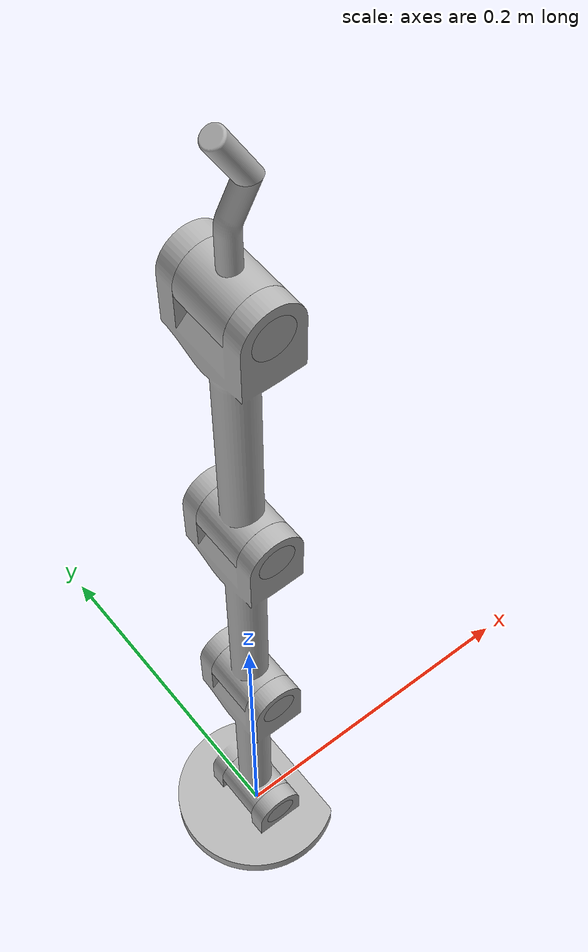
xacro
<?xml version="1.0" ?>
<robot name="brazo_omni_v2" xmlns:xacro="http://www.ros.org/wiki/xacro">

<xacro:include filename="$(find brazo_omni_v2_description)/urdf/materials.xacro" />
<xacro:include filename="$(find brazo_omni_v2_description)/urdf/brazo_omni_v2.trans" />
<xacro:include filename="$(find brazo_omni_v2_description)/urdf/brazo_omni_v2.gazebo" />
<link name="base_link">
  <inertial>
    <origin xyz="-0.005540193790928124 7.370553273120713e-18 0.00724588623657782" rpy="0 0 0"/>
    <mass value="0.6054102338350126"/>
    <inertia ixx="0.000419" iyy="0.000276" izz="0.00063" ixy="-0.0" iyz="-0.0" ixz="-8e-06"/>
  </inertial>
  <visual>
    <origin xyz="0 0 0" rpy="0 0 0"/>
    <geometry>
      <mesh filename="package://brazo_omni_v2_description/meshes/base_link.stl" scale="0.001 0.001 0.001"/>
    </geometry>
    <material name="silver"/>
  </visual>
  <collision>
    <origin xyz="0 0 0" rpy="0 0 0"/>
    <geometry>
      <mesh filename="package://brazo_omni_v2_description/meshes/base_link.stl" scale="0.001 0.001 0.001"/>
    </geometry>
  </collision>
</link>

<link name="l1_1">
  <inertial>
    <origin xyz="1.5924509824096877e-10 -0.024999988944218354 0.06944981476509293" rpy="0 0 0"/>
    <mass value="0.7212107061266948"/>
    <inertia ixx="0.00243" iyy="0.002364" izz="0.000137" ixy="-0.0" iyz="-0.0" ixz="-0.0"/>
  </inertial>
  <visual>
    <origin xyz="-0.0 -0.025 -0.025" rpy="0 0 0"/>
    <geometry>
      <mesh filename="package://brazo_omni_v2_description/meshes/l1_1.stl" scale="0.001 0.001 0.001"/>
    </geometry>
    <material name="silver"/>
  </visual>
  <collision>
    <origin xyz="-0.0 -0.025 -0.025" rpy="0 0 0"/>
    <geometry>
      <mesh filename="package://brazo_omni_v2_description/meshes/l1_1.stl" scale="0.001 0.001 0.001"/>
    </geometry>
  </collision>
</link>

<link name="l2_1">
  <inertial>
    <origin xyz="1.592451013345226e-10 -0.024999988944218367 0.06944981476509296" rpy="0 0 0"/>
    <mass value="0.7212107061266951"/>
    <inertia ixx="0.00243" iyy="0.002364" izz="0.000137" ixy="-0.0" iyz="-0.0" ixz="-0.0"/>
  </inertial>
  <visual>
    <origin xyz="-0.0 -0.025 -0.175" rpy="0 0 0"/>
    <geometry>
      <mesh filename="package://brazo_omni_v2_description/meshes/l2_1.stl" scale="0.001 0.001 0.001"/>
    </geometry>
    <material name="silver"/>
  </visual>
  <collision>
    <origin xyz="-0.0 -0.025 -0.175" rpy="0 0 0"/>
    <geometry>
      <mesh filename="package://brazo_omni_v2_description/meshes/l2_1.stl" scale="0.001 0.001 0.001"/>
    </geometry>
  </collision>
</link>

<link name="l3_1">
  <inertial>
    <origin xyz="1.5924509514741469e-10 -0.024999988944218378 0.06944981476509277" rpy="0 0 0"/>
    <mass value="0.7212107061266956"/>
    <inertia ixx="0.00243" iyy="0.002364" izz="0.000137" ixy="-0.0" iyz="-0.0" ixz="-0.0"/>
  </inertial>
  <visual>
    <origin xyz="-0.0 -0.025 -0.325" rpy="0 0 0"/>
    <geometry>
      <mesh filename="package://brazo_omni_v2_description/meshes/l3_1.stl" scale="0.001 0.001 0.001"/>
    </geometry>
    <material name="silver"/>
  </visual>
  <collision>
    <origin xyz="-0.0 -0.025 -0.325" rpy="0 0 0"/>
    <geometry>
      <mesh filename="package://brazo_omni_v2_description/meshes/l3_1.stl" scale="0.001 0.001 0.001"/>
    </geometry>
  </collision>
</link>

<link name="eff1_1">
  <inertial>
    <origin xyz="0.00022190767864116318 -0.024999995073830102 0.0033250062490560728" rpy="0 0 0"/>
    <mass value="0.23955016544085592"/>
    <inertia ixx="7e-05" iyy="4.8e-05" izz="4.4e-05" ixy="0.0" iyz="-0.0" ixz="-2e-06"/>
  </inertial>
  <visual>
    <origin xyz="-0.0 -0.025 -0.475" rpy="0 0 0"/>
    <geometry>
      <mesh filename="package://brazo_omni_v2_description/meshes/eff1_1.stl" scale="0.001 0.001 0.001"/>
    </geometry>
    <material name="silver"/>
  </visual>
  <collision>
    <origin xyz="-0.0 -0.025 -0.475" rpy="0 0 0"/>
    <geometry>
      <mesh filename="package://brazo_omni_v2_description/meshes/eff1_1.stl" scale="0.001 0.001 0.001"/>
    </geometry>
  </collision>
</link>

<link name="eff2_1">
  <inertial>
    <origin xyz="-0.006622721772453566 -2.385833209151547e-13 0.011738496925933317" rpy="0 0 0"/>
    <mass value="0.016665776391530194"/>
    <inertia ixx="1e-06" iyy="1e-06" izz="0.0" ixy="-0.0" iyz="0.0" ixz="0.0"/>
  </inertial>
  <visual>
    <origin xyz="-0.009226 0.0 -0.525981" rpy="0 0 0"/>
    <geometry>
      <mesh filename="package://brazo_omni_v2_description/meshes/eff2_1.stl" scale="0.001 0.001 0.001"/>
    </geometry>
    <material name="silver"/>
  </visual>
  <collision>
    <origin xyz="-0.009226 0.0 -0.525981" rpy="0 0 0"/>
    <geometry>
      <mesh filename="package://brazo_omni_v2_description/meshes/eff2_1.stl" scale="0.001 0.001 0.001"/>
    </geometry>
  </collision>
</link>

<joint name="l1_to_base_link" type="revolute">
  <origin xyz="0.0 0.025 0.025" rpy="0 0 0"/>
  <parent link="base_link"/>
  <child link="l1_1"/>
  <axis xyz="0.0 1.0 0.0"/>
  <limit upper="1.570796" lower="-1.570796" effort="100" velocity="100"/>
</joint>

<joint name="l2_to_l1" type="revolute">
  <origin xyz="0.0 0.0 0.15" rpy="0 0 0"/>
  <parent link="l1_1"/>
  <child link="l2_1"/>
  <axis xyz="0.0 1.0 0.0"/>
  <limit upper="1.919862" lower="-1.919862" effort="100" velocity="100"/>
</joint>

<joint name="l3_to_l2" type="revolute">
  <origin xyz="0.0 0.0 0.15" rpy="0 0 0"/>
  <parent link="l2_1"/>
  <child link="l3_1"/>
  <axis xyz="0.0 1.0 -0.0"/>
  <limit upper="1.919862" lower="-1.919862" effort="100" velocity="100"/>
</joint>

<joint name="end_effector_to_l3" type="revolute">
  <origin xyz="0.0 0.0 0.15" rpy="0 0 0"/>
  <parent link="l3_1"/>
  <child link="eff1_1"/>
  <axis xyz="-0.0 1.0 -0.0"/>
  <limit upper="2.094395" lower="-2.094395" effort="100" velocity="100"/>
</joint>

<joint name="eff_2_to_eff_1" type="fixed">
  <origin xyz="0.009226 -0.025 0.050981" rpy="0 0 0"/>
  <parent link="eff1_1"/>
  <child link="eff2_1"/>
</joint>

</robot>

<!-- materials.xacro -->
<robot name="brazo_omni_v2" xmlns:xacro="http://www.ros.org/wiki/xacro" >

<material name="silver">
  <color rgba="0.700 0.700 0.700 1.000"/>
</material>

</robot>

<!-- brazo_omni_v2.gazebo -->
<robot name="brazo_omni_v2" xmlns:xacro="http://www.ros.org/wiki/xacro" >

<xacro:property name="body_color" value="Gazebo/Silver" />

<gazebo>
  <plugin name="control" filename="libgazebo_ros_control.so"/>
</gazebo>
<gazebo reference="base_link">
  <material>${body_color}</material>
  <mu1>0.2</mu1>
  <mu2>0.2</mu2>
  <selfCollide>true</selfCollide>
  <gravity>true</gravity>
</gazebo>

<gazebo reference="l1_1">
  <material>${body_color}</material>
  <mu1>0.2</mu1>
  <mu2>0.2</mu2>
  <selfCollide>true</selfCollide>
</gazebo>

<gazebo reference="l2_1">
  <material>${body_color}</material>
  <mu1>0.2</mu1>
  <mu2>0.2</mu2>
  <selfCollide>true</selfCollide>
</gazebo>

<gazebo reference="l3_1">
  <material>${body_color}</material>
  <mu1>0.2</mu1>
  <mu2>0.2</mu2>
  <selfCollide>true</selfCollide>
</gazebo>

<gazebo reference="eff1_1">
  <material>${body_color}</material>
  <mu1>0.2</mu1>
  <mu2>0.2</mu2>
  <selfCollide>true</selfCollide>
</gazebo>

<gazebo reference="eff1_1">
  <material>${body_color}</material>
  <mu1>0.2</mu1>
  <mu2>0.2</mu2>
  <selfCollide>true</selfCollide>
</gazebo>

<gazebo reference="eff2_1">
  <material>${body_color}</material>
  <mu1>0.2</mu1>
  <mu2>0.2</mu2>
  <selfCollide>true</selfCollide>
</gazebo>

</robot>
